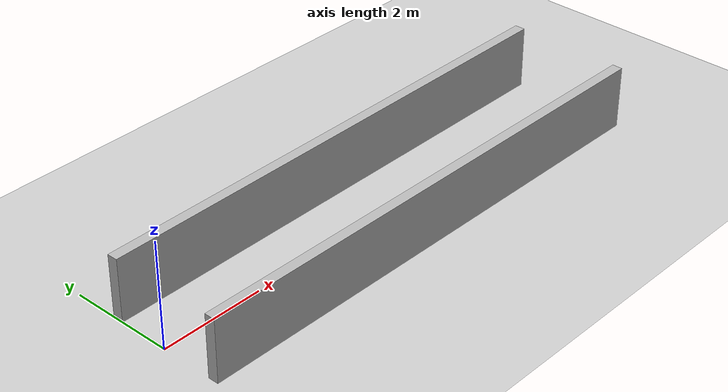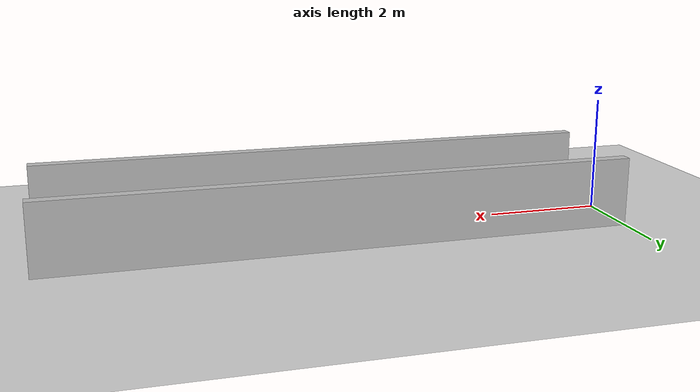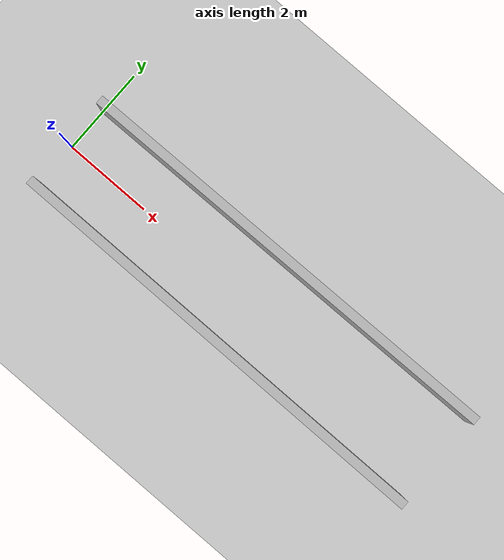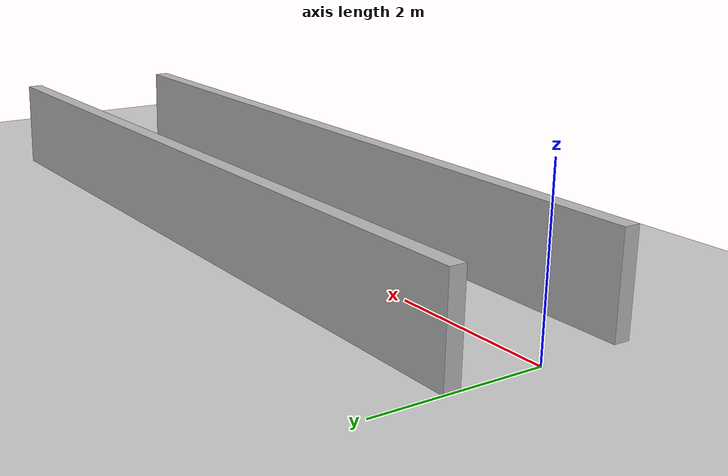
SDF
<?xml version="1.0"?>
<sdf version="1.6">
  <world name="v2-04g-r4-corridor-s5072">
    <gravity>0 0 -9.81</gravity>
    <physics name="v2_deterministic" type="ode">
      <max_step_size>0.002</max_step_size>
      <real_time_update_rate>500</real_time_update_rate>
    </physics>
    <include>
      <uri>model://sun</uri>
    </include>
    <include>
      <uri>model://ground_plane</uri>
    </include>
    <model name="corridor-left">
      <static>true</static>
      <pose>4.998831736 1.087172351 0.600000000 0 0 0.003529696</pose>
      <link name="link">
        <collision name="collision">
          <geometry>
            <box>
              <size>10.000000 0.200000 1.200000</size>
            </box>
          </geometry>
        </collision>
        <visual name="visual">
          <geometry>
            <box>
              <size>10.000000 0.200000 1.200000</size>
            </box>
          </geometry>
        </visual>
      </link>
    </model>
    <model name="corridor-right">
      <static>true</static>
      <pose>4.997066588 -1.100896944 0.600000000 0 0 -0.003765166</pose>
      <link name="link">
        <collision name="collision">
          <geometry>
            <box>
              <size>10.000000 0.200000 1.200000</size>
            </box>
          </geometry>
        </collision>
        <visual name="visual">
          <geometry>
            <box>
              <size>10.000000 0.200000 1.200000</size>
            </box>
          </geometry>
        </visual>
      </link>
    </model>
  </world>
</sdf>
